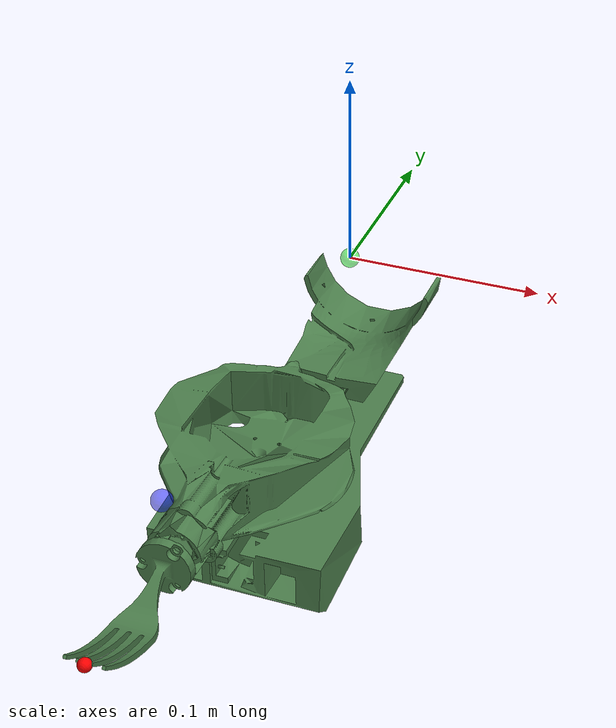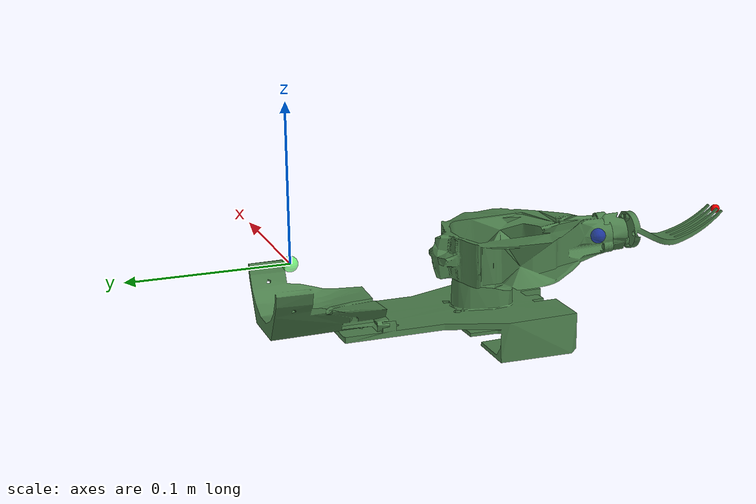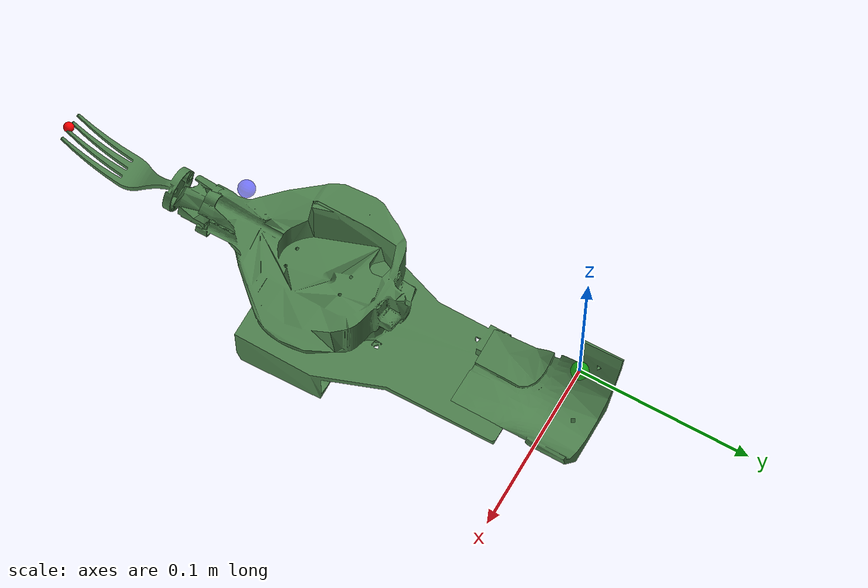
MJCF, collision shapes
<mujoco model="forque">

  <default>
    <default class="forque_visual">
      <geom type="mesh" contype="0" conaffinity="0" group="2"/>
    </default>
    <default class="forque_collision">
      <geom type="mesh" contype="1" conaffinity="1" group="3"
            rgba="0.3 0.5 0.3 0.2"/>
    </default>
  </default>

  <asset>
    <material name="abs_plastic" rgba="0.25 0.25 0.25 1" specular="0.15" shininess="0.1"/>
    <material name="ati_aluminum" rgba="0.45 0.47 0.50 1" specular="0.6" shininess="0.4" reflectance="0.1"/>
    <material name="fork_steel" rgba="0.75 0.75 0.78 1" specular="0.8" shininess="0.7" reflectance="0.2"/>
    <mesh name="ft_arm_mount" file="2024_01_18_FTArmMount.stl" scale="0.001 0.001 0.001"/>
    <mesh name="ft_mount" file="2024_01_18_FTMount.stl" scale="0.001 0.001 0.001"/>
    <mesh name="ft_electronics" file="2023_03_09_wirelessFT.stl" scale="0.001 0.001 0.001"/>
    <mesh name="fork_handle" file="2024_06_24_forkHandleHollow.stl" scale="0.001 0.001 0.001"/>
    <mesh name="fork_handle_cover" file="2024_06_24_forkHandleCover.stl" scale="0.001 0.001 0.001"/>
    <mesh name="ft_sensor_body" file="ATI-9105-TW-NANO25-E.stl" scale="0.001 0.001 0.001"/>
    <mesh name="fork_tine" file="fork_tine.stl" scale="0.001 0.001 0.001"/>
  </asset>

  <worldbody>
    <body gravcomp="1" name="fork_base">
      <freejoint name="fork_freejoint"/>
      <!-- FTArmMount inertial from xacro (mass=0.03783, cog from ada.xacro) -->
      <inertial pos="0.010957 -0.019223 -0.03777" mass="0.03783"
                fullinertia="0.000018817 0.0000039478 0.000019505 -0.0000003327 -0.000000092476 -0.0000040684"/>
      <geom class="forque_visual" mesh="ft_arm_mount" material="abs_plastic"/>
      <geom class="forque_collision" mesh="ft_arm_mount"/>
      <site name="grasp_site" pos="0 0 0" size="0.005" rgba="0 1 0 0.5"/>

      <!-- FTMount + FT electronics: xyz=[0, 0, -0.005] -->
      <body gravcomp="1" name="ft_mount" pos="0 0 -0.005">
        <inertial pos="0.010934 -0.138522 -0.05066" mass="0.103"
                  fullinertia="0.00017623 0.000068428 0.00021455 0.00000095729 -0.0000000562908 -0.00001757133"/>
        <geom class="forque_visual" mesh="ft_mount" material="abs_plastic"/>
        <geom class="forque_collision" mesh="ft_mount"/>
        <!-- FT wireless electronics (visual only, same origin as ft_mount) -->
        <geom class="forque_visual" mesh="ft_electronics" material="abs_plastic"/>

        <!-- forkHandle + cover: xyz=[0, 0.005, 0.0013], rpy=[-0.025, 0, -0.0065]
             Slight rotation from empirical deformation when gripped (per xacro comment). -->
        <body gravcomp="1" name="fork_handle" pos="0 0.005 0.0013"
              quat="0.999917 -0.012500 0.000041 -0.003250">
          <inertial pos="0.011097 -0.162629 -0.011948" mass="0.028"
                    fullinertia="0.00003114 0.000011867 0.000038478 -0.00000050626 0.000000082271 0.00000054005"/>
          <geom class="forque_visual" mesh="fork_handle" material="abs_plastic"/>
          <geom class="forque_collision" mesh="fork_handle"/>
          <!-- Handle cover (visual only, same origin as fork_handle) -->
          <geom class="forque_visual" mesh="fork_handle_cover" material="abs_plastic"/>

          <!-- ATI-9105-TW-NANO25-E sensor body: xyz=[-0.00634, -0.222553, -0.004286]
               rpy=[π/2, π/3, 0] = quat=[0.612372, 0.612372, 0.353553, -0.353553] -->
          <body gravcomp="1" name="forque_sensor" pos="-0.00634 -0.222553 -0.004286"
                quat="0.612372 0.612372 0.353553 -0.353553">
            <inertial pos="0.0124692 0.0137169 0.010558" mass="0.0634"
                      fullinertia="0.000005235822 0.000006264852 0.00000640797 -0.0000003129932 0.000000013798 -0.00000004033694"/>
            <geom class="forque_visual" mesh="ft_sensor_body" material="ati_aluminum"/>
            <geom class="forque_collision" mesh="ft_sensor_body"/>

            <site name="ft_sensor_site" pos="0 0 -0.009" size="0.005" rgba="0 0 1 0.5"/>

            <!-- Fork tine: xyz=[-0.0054, 0.008, 0.093]
                 rpy=[0, π, 240°] = quat=[0, -0.866025, -0.5, 0] -->
            <body gravcomp="1" name="fork_tine" pos="-0.0054 0.008 0.093"
                  quat="0.000000 -0.866025 -0.500000 0.000000">
              <inertial pos="0.013090 0.0180789 0.0445231" mass="0.024"
                        fullinertia="0.0000098769 0.000009848103 0.0000015674 0.000000000806182 -0.00000000296036 0.00000057639"/>
              <geom class="forque_visual" mesh="fork_tine" material="fork_steel"/>
              <geom class="forque_collision" mesh="fork_tine"/>

              <!-- Fork tip — feeding contact point. -->
              <site name="fork_tip" pos="0.0135 0.007 0"
                    quat="0.000000 1.000000 0.000000 0.000000"
                    size="0.003" rgba="1 0 0 1"/>
            </body>

          </body>
        </body>
      </body>
    </body>
  </worldbody>

  <!-- ATI Nano25-E F/T sensor (SI-125-3 calibration).
       Fx,Fy ±125 N, Fz ±500 N, Tx,Ty,Tz ±3 Nm.
       Cutoff uses conservative axis. Noise from datasheet RMS. -->
  <sensor>
    <force name="ft_force" site="ft_sensor_site" cutoff="125" noise="0.06"/>
    <torque name="ft_torque" site="ft_sensor_site" cutoff="3" noise="0.003"/>
  </sensor>
</mujoco>
